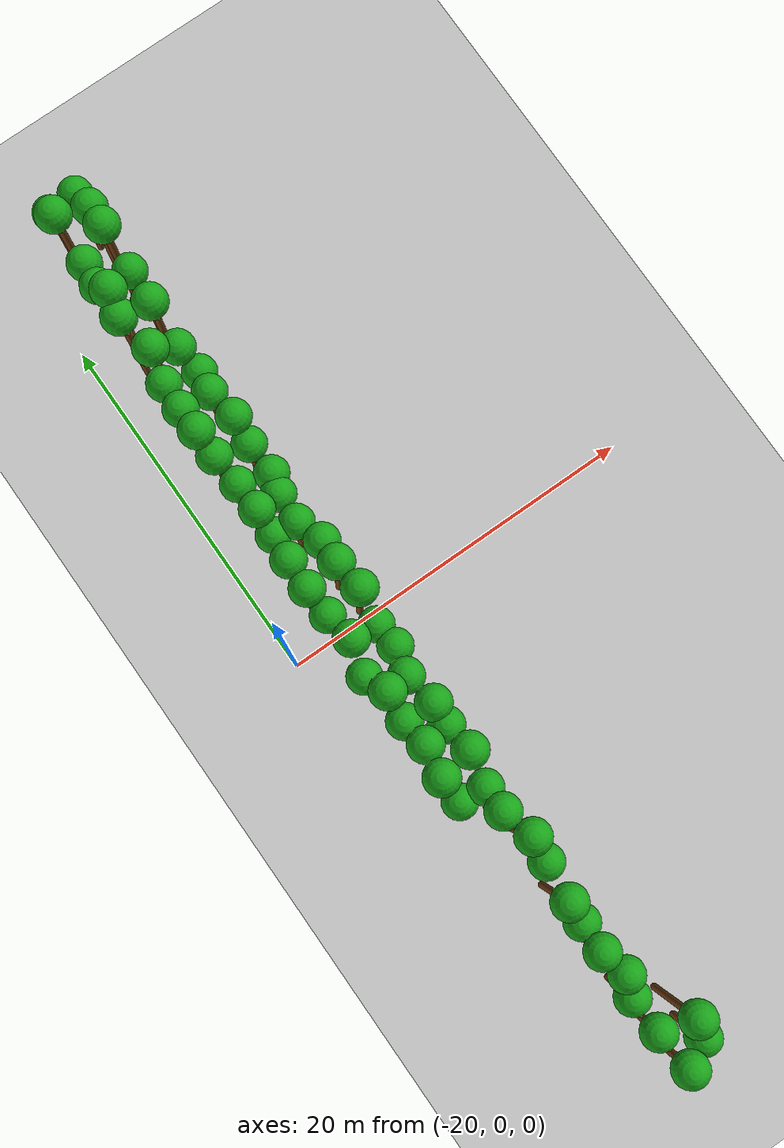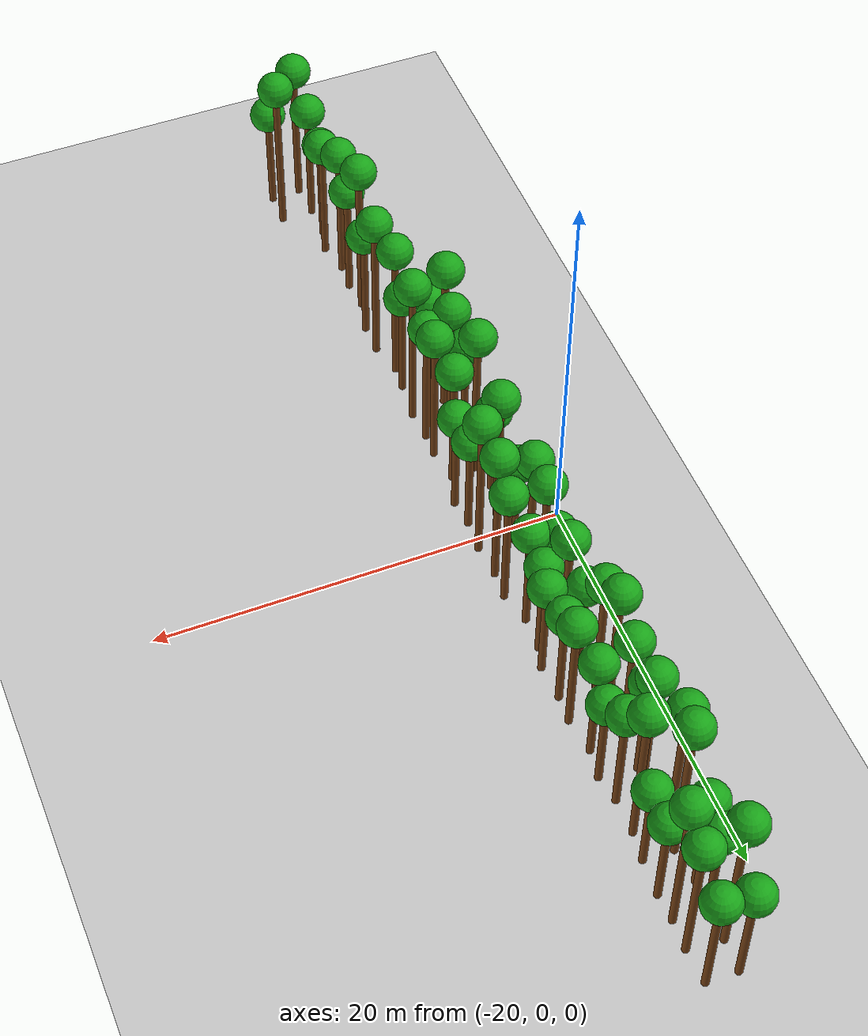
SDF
<sdf version="1.6">
 <world name="forest_world">
  <include><uri>model://sun</uri></include>
  <include><uri>model://ground_plane</uri></include>
  <model name="tree_180">
   <static>true</static>
   <link name="trunk">
    <collision name="collision">
     <pose>-17.45 -10.08 2.68 0 0 0</pose>
     <geometry><cylinder><radius>0.18</radius><length>5.37</length></cylinder></geometry>
    </collision>
    <visual name="trunk_visual">
     <pose>-17.45 -10.08 2.68 0 0 0</pose>
     <geometry><cylinder><radius>0.18</radius><length>5.37</length></cylinder></geometry>
     <material><ambient>0.35 0.20 0.05 1</ambient><diffuse>0.45 0.25 0.08 1</diffuse></material>
    </visual>
    <visual name="leaf_visual">
     <pose>-17.45 -10.08 5.82 0 0 0</pose>
     <geometry><sphere><radius>0.9</radius></sphere></geometry>
     <material><ambient>0.05 0.45 0.05 1</ambient><diffuse>0.10 0.65 0.10 1</diffuse></material>
    </visual>
   </link>
  </model>
  <model name="tree_181">
   <static>true</static>
   <link name="trunk">
    <collision name="collision">
     <pose>-17.66 -8.57 4.39 0 0 0</pose>
     <geometry><cylinder><radius>0.18</radius><length>8.78</length></cylinder></geometry>
    </collision>
    <visual name="trunk_visual">
     <pose>-17.66 -8.57 4.39 0 0 0</pose>
     <geometry><cylinder><radius>0.18</radius><length>8.78</length></cylinder></geometry>
     <material><ambient>0.35 0.20 0.05 1</ambient><diffuse>0.45 0.25 0.08 1</diffuse></material>
    </visual>
    <visual name="leaf_visual">
     <pose>-17.66 -8.57 9.23 0 0 0</pose>
     <geometry><sphere><radius>0.9</radius></sphere></geometry>
     <material><ambient>0.05 0.45 0.05 1</ambient><diffuse>0.10 0.65 0.10 1</diffuse></material>
    </visual>
   </link>
  </model>
  <model name="tree_182">
   <static>true</static>
   <link name="trunk">
    <collision name="collision">
     <pose>-17.35 -6.99 3.85 0 0 0</pose>
     <geometry><cylinder><radius>0.18</radius><length>7.70</length></cylinder></geometry>
    </collision>
    <visual name="trunk_visual">
     <pose>-17.35 -6.99 3.85 0 0 0</pose>
     <geometry><cylinder><radius>0.18</radius><length>7.70</length></cylinder></geometry>
     <material><ambient>0.35 0.20 0.05 1</ambient><diffuse>0.45 0.25 0.08 1</diffuse></material>
    </visual>
    <visual name="leaf_visual">
     <pose>-17.35 -6.99 8.15 0 0 0</pose>
     <geometry><sphere><radius>0.9</radius></sphere></geometry>
     <material><ambient>0.05 0.45 0.05 1</ambient><diffuse>0.10 0.65 0.10 1</diffuse></material>
    </visual>
   </link>
  </model>
  <model name="tree_183">
   <static>true</static>
   <link name="trunk">
    <collision name="collision">
     <pose>-17.48 -5.57 3.36 0 0 0</pose>
     <geometry><cylinder><radius>0.18</radius><length>6.71</length></cylinder></geometry>
    </collision>
    <visual name="trunk_visual">
     <pose>-17.48 -5.57 3.36 0 0 0</pose>
     <geometry><cylinder><radius>0.18</radius><length>6.71</length></cylinder></geometry>
     <material><ambient>0.35 0.20 0.05 1</ambient><diffuse>0.45 0.25 0.08 1</diffuse></material>
    </visual>
    <visual name="leaf_visual">
     <pose>-17.48 -5.57 7.16 0 0 0</pose>
     <geometry><sphere><radius>0.9</radius></sphere></geometry>
     <material><ambient>0.05 0.45 0.05 1</ambient><diffuse>0.10 0.65 0.10 1</diffuse></material>
    </visual>
   </link>
  </model>
  <model name="tree_184">
   <static>true</static>
   <link name="trunk">
    <collision name="collision">
     <pose>-17.42 -4.07 4.40 0 0 0</pose>
     <geometry><cylinder><radius>0.18</radius><length>8.80</length></cylinder></geometry>
    </collision>
    <visual name="trunk_visual">
     <pose>-17.42 -4.07 4.40 0 0 0</pose>
     <geometry><cylinder><radius>0.18</radius><length>8.80</length></cylinder></geometry>
     <material><ambient>0.35 0.20 0.05 1</ambient><diffuse>0.45 0.25 0.08 1</diffuse></material>
    </visual>
    <visual name="leaf_visual">
     <pose>-17.42 -4.07 9.25 0 0 0</pose>
     <geometry><sphere><radius>0.9</radius></sphere></geometry>
     <material><ambient>0.05 0.45 0.05 1</ambient><diffuse>0.10 0.65 0.10 1</diffuse></material>
    </visual>
   </link>
  </model>
  <model name="tree_185">
   <static>true</static>
   <link name="trunk">
    <collision name="collision">
     <pose>-17.74 -2.74 2.51 0 0 0</pose>
     <geometry><cylinder><radius>0.18</radius><length>5.03</length></cylinder></geometry>
    </collision>
    <visual name="trunk_visual">
     <pose>-17.74 -2.74 2.51 0 0 0</pose>
     <geometry><cylinder><radius>0.18</radius><length>5.03</length></cylinder></geometry>
     <material><ambient>0.35 0.20 0.05 1</ambient><diffuse>0.45 0.25 0.08 1</diffuse></material>
    </visual>
    <visual name="leaf_visual">
     <pose>-17.74 -2.74 5.48 0 0 0</pose>
     <geometry><sphere><radius>0.9</radius></sphere></geometry>
     <material><ambient>0.05 0.45 0.05 1</ambient><diffuse>0.10 0.65 0.10 1</diffuse></material>
    </visual>
   </link>
  </model>
  <model name="tree_186">
   <static>true</static>
   <link name="trunk">
    <collision name="collision">
     <pose>-17.34 -1.12 3.91 0 0 0</pose>
     <geometry><cylinder><radius>0.18</radius><length>7.81</length></cylinder></geometry>
    </collision>
    <visual name="trunk_visual">
     <pose>-17.34 -1.12 3.91 0 0 0</pose>
     <geometry><cylinder><radius>0.18</radius><length>7.81</length></cylinder></geometry>
     <material><ambient>0.35 0.20 0.05 1</ambient><diffuse>0.45 0.25 0.08 1</diffuse></material>
    </visual>
    <visual name="leaf_visual">
     <pose>-17.34 -1.12 8.26 0 0 0</pose>
     <geometry><sphere><radius>0.9</radius></sphere></geometry>
     <material><ambient>0.05 0.45 0.05 1</ambient><diffuse>0.10 0.65 0.10 1</diffuse></material>
    </visual>
   </link>
  </model>
  <model name="tree_187">
   <static>true</static>
   <link name="trunk">
    <collision name="collision">
     <pose>-17.50 0.65 2.58 0 0 0</pose>
     <geometry><cylinder><radius>0.18</radius><length>5.16</length></cylinder></geometry>
    </collision>
    <visual name="trunk_visual">
     <pose>-17.50 0.65 2.58 0 0 0</pose>
     <geometry><cylinder><radius>0.18</radius><length>5.16</length></cylinder></geometry>
     <material><ambient>0.35 0.20 0.05 1</ambient><diffuse>0.45 0.25 0.08 1</diffuse></material>
    </visual>
    <visual name="leaf_visual">
     <pose>-17.50 0.65 5.61 0 0 0</pose>
     <geometry><sphere><radius>0.9</radius></sphere></geometry>
     <material><ambient>0.05 0.45 0.05 1</ambient><diffuse>0.10 0.65 0.10 1</diffuse></material>
    </visual>
   </link>
  </model>
  <model name="tree_188">
   <static>true</static>
   <link name="trunk">
    <collision name="collision">
     <pose>-17.66 2.03 3.47 0 0 0</pose>
     <geometry><cylinder><radius>0.18</radius><length>6.95</length></cylinder></geometry>
    </collision>
    <visual name="trunk_visual">
     <pose>-17.66 2.03 3.47 0 0 0</pose>
     <geometry><cylinder><radius>0.18</radius><length>6.95</length></cylinder></geometry>
     <material><ambient>0.35 0.20 0.05 1</ambient><diffuse>0.45 0.25 0.08 1</diffuse></material>
    </visual>
    <visual name="leaf_visual">
     <pose>-17.66 2.03 7.40 0 0 0</pose>
     <geometry><sphere><radius>0.9</radius></sphere></geometry>
     <material><ambient>0.05 0.45 0.05 1</ambient><diffuse>0.10 0.65 0.10 1</diffuse></material>
    </visual>
   </link>
  </model>
  <model name="tree_189">
   <static>true</static>
   <link name="trunk">
    <collision name="collision">
     <pose>-17.61 3.60 3.52 0 0 0</pose>
     <geometry><cylinder><radius>0.18</radius><length>7.03</length></cylinder></geometry>
    </collision>
    <visual name="trunk_visual">
     <pose>-17.61 3.60 3.52 0 0 0</pose>
     <geometry><cylinder><radius>0.18</radius><length>7.03</length></cylinder></geometry>
     <material><ambient>0.35 0.20 0.05 1</ambient><diffuse>0.45 0.25 0.08 1</diffuse></material>
    </visual>
    <visual name="leaf_visual">
     <pose>-17.61 3.60 7.48 0 0 0</pose>
     <geometry><sphere><radius>0.9</radius></sphere></geometry>
     <material><ambient>0.05 0.45 0.05 1</ambient><diffuse>0.10 0.65 0.10 1</diffuse></material>
    </visual>
   </link>
  </model>
  <model name="tree_190">
   <static>true</static>
   <link name="trunk">
    <collision name="collision">
     <pose>-17.45 5.20 2.87 0 0 0</pose>
     <geometry><cylinder><radius>0.18</radius><length>5.74</length></cylinder></geometry>
    </collision>
    <visual name="trunk_visual">
     <pose>-17.45 5.20 2.87 0 0 0</pose>
     <geometry><cylinder><radius>0.18</radius><length>5.74</length></cylinder></geometry>
     <material><ambient>0.35 0.20 0.05 1</ambient><diffuse>0.45 0.25 0.08 1</diffuse></material>
    </visual>
    <visual name="leaf_visual">
     <pose>-17.45 5.20 6.19 0 0 0</pose>
     <geometry><sphere><radius>0.9</radius></sphere></geometry>
     <material><ambient>0.05 0.45 0.05 1</ambient><diffuse>0.10 0.65 0.10 1</diffuse></material>
    </visual>
   </link>
  </model>
  <model name="tree_191">
   <static>true</static>
   <link name="trunk">
    <collision name="collision">
     <pose>-17.44 6.49 3.33 0 0 0</pose>
     <geometry><cylinder><radius>0.18</radius><length>6.65</length></cylinder></geometry>
    </collision>
    <visual name="trunk_visual">
     <pose>-17.44 6.49 3.33 0 0 0</pose>
     <geometry><cylinder><radius>0.18</radius><length>6.65</length></cylinder></geometry>
     <material><ambient>0.35 0.20 0.05 1</ambient><diffuse>0.45 0.25 0.08 1</diffuse></material>
    </visual>
    <visual name="leaf_visual">
     <pose>-17.44 6.49 7.10 0 0 0</pose>
     <geometry><sphere><radius>0.9</radius></sphere></geometry>
     <material><ambient>0.05 0.45 0.05 1</ambient><diffuse>0.10 0.65 0.10 1</diffuse></material>
    </visual>
   </link>
  </model>
  <model name="tree_192">
   <static>true</static>
   <link name="trunk">
    <collision name="collision">
     <pose>-17.45 8.25 2.75 0 0 0</pose>
     <geometry><cylinder><radius>0.18</radius><length>5.51</length></cylinder></geometry>
    </collision>
    <visual name="trunk_visual">
     <pose>-17.45 8.25 2.75 0 0 0</pose>
     <geometry><cylinder><radius>0.18</radius><length>5.51</length></cylinder></geometry>
     <material><ambient>0.35 0.20 0.05 1</ambient><diffuse>0.45 0.25 0.08 1</diffuse></material>
    </visual>
    <visual name="leaf_visual">
     <pose>-17.45 8.25 5.96 0 0 0</pose>
     <geometry><sphere><radius>0.9</radius></sphere></geometry>
     <material><ambient>0.05 0.45 0.05 1</ambient><diffuse>0.10 0.65 0.10 1</diffuse></material>
    </visual>
   </link>
  </model>
  <model name="tree_193">
   <static>true</static>
   <link name="trunk">
    <collision name="collision">
     <pose>-17.67 9.58 3.62 0 0 0</pose>
     <geometry><cylinder><radius>0.18</radius><length>7.24</length></cylinder></geometry>
    </collision>
    <visual name="trunk_visual">
     <pose>-17.67 9.58 3.62 0 0 0</pose>
     <geometry><cylinder><radius>0.18</radius><length>7.24</length></cylinder></geometry>
     <material><ambient>0.35 0.20 0.05 1</ambient><diffuse>0.45 0.25 0.08 1</diffuse></material>
    </visual>
    <visual name="leaf_visual">
     <pose>-17.67 9.58 7.69 0 0 0</pose>
     <geometry><sphere><radius>0.9</radius></sphere></geometry>
     <material><ambient>0.05 0.45 0.05 1</ambient><diffuse>0.10 0.65 0.10 1</diffuse></material>
    </visual>
   </link>
  </model>
  <model name="tree_194">
   <static>true</static>
   <link name="trunk">
    <collision name="collision">
     <pose>-17.72 10.84 4.04 0 0 0</pose>
     <geometry><cylinder><radius>0.18</radius><length>8.08</length></cylinder></geometry>
    </collision>
    <visual name="trunk_visual">
     <pose>-17.72 10.84 4.04 0 0 0</pose>
     <geometry><cylinder><radius>0.18</radius><length>8.08</length></cylinder></geometry>
     <material><ambient>0.35 0.20 0.05 1</ambient><diffuse>0.45 0.25 0.08 1</diffuse></material>
    </visual>
    <visual name="leaf_visual">
     <pose>-17.72 10.84 8.53 0 0 0</pose>
     <geometry><sphere><radius>0.9</radius></sphere></geometry>
     <material><ambient>0.05 0.45 0.05 1</ambient><diffuse>0.10 0.65 0.10 1</diffuse></material>
    </visual>
   </link>
  </model>
  <model name="tree_195">
   <static>true</static>
   <link name="trunk">
    <collision name="collision">
     <pose>-17.69 12.46 3.43 0 0 0</pose>
     <geometry><cylinder><radius>0.18</radius><length>6.85</length></cylinder></geometry>
    </collision>
    <visual name="trunk_visual">
     <pose>-17.69 12.46 3.43 0 0 0</pose>
     <geometry><cylinder><radius>0.18</radius><length>6.85</length></cylinder></geometry>
     <material><ambient>0.35 0.20 0.05 1</ambient><diffuse>0.45 0.25 0.08 1</diffuse></material>
    </visual>
    <visual name="leaf_visual">
     <pose>-17.69 12.46 7.30 0 0 0</pose>
     <geometry><sphere><radius>0.9</radius></sphere></geometry>
     <material><ambient>0.05 0.45 0.05 1</ambient><diffuse>0.10 0.65 0.10 1</diffuse></material>
    </visual>
   </link>
  </model>
  <model name="tree_196">
   <static>true</static>
   <link name="trunk">
    <collision name="collision">
     <pose>-17.62 14.14 3.06 0 0 0</pose>
     <geometry><cylinder><radius>0.18</radius><length>6.13</length></cylinder></geometry>
    </collision>
    <visual name="trunk_visual">
     <pose>-17.62 14.14 3.06 0 0 0</pose>
     <geometry><cylinder><radius>0.18</radius><length>6.13</length></cylinder></geometry>
     <material><ambient>0.35 0.20 0.05 1</ambient><diffuse>0.45 0.25 0.08 1</diffuse></material>
    </visual>
    <visual name="leaf_visual">
     <pose>-17.62 14.14 6.58 0 0 0</pose>
     <geometry><sphere><radius>0.9</radius></sphere></geometry>
     <material><ambient>0.05 0.45 0.05 1</ambient><diffuse>0.10 0.65 0.10 1</diffuse></material>
    </visual>
   </link>
  </model>
  <model name="tree_197">
   <static>true</static>
   <link name="trunk">
    <collision name="collision">
     <pose>-17.27 15.26 4.13 0 0 0</pose>
     <geometry><cylinder><radius>0.18</radius><length>8.25</length></cylinder></geometry>
    </collision>
    <visual name="trunk_visual">
     <pose>-17.27 15.26 4.13 0 0 0</pose>
     <geometry><cylinder><radius>0.18</radius><length>8.25</length></cylinder></geometry>
     <material><ambient>0.35 0.20 0.05 1</ambient><diffuse>0.45 0.25 0.08 1</diffuse></material>
    </visual>
    <visual name="leaf_visual">
     <pose>-17.27 15.26 8.70 0 0 0</pose>
     <geometry><sphere><radius>0.9</radius></sphere></geometry>
     <material><ambient>0.05 0.45 0.05 1</ambient><diffuse>0.10 0.65 0.10 1</diffuse></material>
    </visual>
   </link>
  </model>
  <model name="tree_198">
   <static>true</static>
   <link name="trunk">
    <collision name="collision">
     <pose>-17.66 17.24 4.23 0 0 0</pose>
     <geometry><cylinder><radius>0.18</radius><length>8.46</length></cylinder></geometry>
    </collision>
    <visual name="trunk_visual">
     <pose>-17.66 17.24 4.23 0 0 0</pose>
     <geometry><cylinder><radius>0.18</radius><length>8.46</length></cylinder></geometry>
     <material><ambient>0.35 0.20 0.05 1</ambient><diffuse>0.45 0.25 0.08 1</diffuse></material>
    </visual>
    <visual name="leaf_visual">
     <pose>-17.66 17.24 8.91 0 0 0</pose>
     <geometry><sphere><radius>0.9</radius></sphere></geometry>
     <material><ambient>0.05 0.45 0.05 1</ambient><diffuse>0.10 0.65 0.10 1</diffuse></material>
    </visual>
   </link>
  </model>
  <model name="tree_199">
   <static>true</static>
   <link name="trunk">
    <collision name="collision">
     <pose>-17.35 18.41 4.50 0 0 0</pose>
     <geometry><cylinder><radius>0.18</radius><length>8.99</length></cylinder></geometry>
    </collision>
    <visual name="trunk_visual">
     <pose>-17.35 18.41 4.50 0 0 0</pose>
     <geometry><cylinder><radius>0.18</radius><length>8.99</length></cylinder></geometry>
     <material><ambient>0.35 0.20 0.05 1</ambient><diffuse>0.45 0.25 0.08 1</diffuse></material>
    </visual>
    <visual name="leaf_visual">
     <pose>-17.35 18.41 9.44 0 0 0</pose>
     <geometry><sphere><radius>0.9</radius></sphere></geometry>
     <material><ambient>0.05 0.45 0.05 1</ambient><diffuse>0.10 0.65 0.10 1</diffuse></material>
    </visual>
   </link>
  </model>
  <model name="tree_200">
   <static>true</static>
   <link name="trunk">
    <collision name="collision">
     <pose>-17.53 20.06 3.00 0 0 0</pose>
     <geometry><cylinder><radius>0.18</radius><length>6.00</length></cylinder></geometry>
    </collision>
    <visual name="trunk_visual">
     <pose>-17.53 20.06 3.00 0 0 0</pose>
     <geometry><cylinder><radius>0.18</radius><length>6.00</length></cylinder></geometry>
     <material><ambient>0.35 0.20 0.05 1</ambient><diffuse>0.45 0.25 0.08 1</diffuse></material>
    </visual>
    <visual name="leaf_visual">
     <pose>-17.53 20.06 6.45 0 0 0</pose>
     <geometry><sphere><radius>0.9</radius></sphere></geometry>
     <material><ambient>0.05 0.45 0.05 1</ambient><diffuse>0.10 0.65 0.10 1</diffuse></material>
    </visual>
   </link>
  </model>
  <model name="tree_201">
   <static>true</static>
   <link name="trunk">
    <collision name="collision">
     <pose>-17.41 21.47 2.89 0 0 0</pose>
     <geometry><cylinder><radius>0.18</radius><length>5.77</length></cylinder></geometry>
    </collision>
    <visual name="trunk_visual">
     <pose>-17.41 21.47 2.89 0 0 0</pose>
     <geometry><cylinder><radius>0.18</radius><length>5.77</length></cylinder></geometry>
     <material><ambient>0.35 0.20 0.05 1</ambient><diffuse>0.45 0.25 0.08 1</diffuse></material>
    </visual>
    <visual name="leaf_visual">
     <pose>-17.41 21.47 6.22 0 0 0</pose>
     <geometry><sphere><radius>0.9</radius></sphere></geometry>
     <material><ambient>0.05 0.45 0.05 1</ambient><diffuse>0.10 0.65 0.10 1</diffuse></material>
    </visual>
   </link>
  </model>
  <model name="tree_202">
   <static>true</static>
   <link name="trunk">
    <collision name="collision">
     <pose>-17.45 22.96 4.37 0 0 0</pose>
     <geometry><cylinder><radius>0.18</radius><length>8.75</length></cylinder></geometry>
    </collision>
    <visual name="trunk_visual">
     <pose>-17.45 22.96 4.37 0 0 0</pose>
     <geometry><cylinder><radius>0.18</radius><length>8.75</length></cylinder></geometry>
     <material><ambient>0.35 0.20 0.05 1</ambient><diffuse>0.45 0.25 0.08 1</diffuse></material>
    </visual>
    <visual name="leaf_visual">
     <pose>-17.45 22.96 9.20 0 0 0</pose>
     <geometry><sphere><radius>0.9</radius></sphere></geometry>
     <material><ambient>0.05 0.45 0.05 1</ambient><diffuse>0.10 0.65 0.10 1</diffuse></material>
    </visual>
   </link>
  </model>
  <model name="tree_203">
   <static>true</static>
   <link name="trunk">
    <collision name="collision">
     <pose>-17.37 24.48 2.93 0 0 0</pose>
     <geometry><cylinder><radius>0.18</radius><length>5.85</length></cylinder></geometry>
    </collision>
    <visual name="trunk_visual">
     <pose>-17.37 24.48 2.93 0 0 0</pose>
     <geometry><cylinder><radius>0.18</radius><length>5.85</length></cylinder></geometry>
     <material><ambient>0.35 0.20 0.05 1</ambient><diffuse>0.45 0.25 0.08 1</diffuse></material>
    </visual>
    <visual name="leaf_visual">
     <pose>-17.37 24.48 6.30 0 0 0</pose>
     <geometry><sphere><radius>0.9</radius></sphere></geometry>
     <material><ambient>0.05 0.45 0.05 1</ambient><diffuse>0.10 0.65 0.10 1</diffuse></material>
    </visual>
   </link>
  </model>
  <model name="tree_204">
   <static>true</static>
   <link name="trunk">
    <collision name="collision">
     <pose>-16.02 -25.18 3.94 0 0 0</pose>
     <geometry><cylinder><radius>0.18</radius><length>7.87</length></cylinder></geometry>
    </collision>
    <visual name="trunk_visual">
     <pose>-16.02 -25.18 3.94 0 0 0</pose>
     <geometry><cylinder><radius>0.18</radius><length>7.87</length></cylinder></geometry>
     <material><ambient>0.35 0.20 0.05 1</ambient><diffuse>0.45 0.25 0.08 1</diffuse></material>
    </visual>
    <visual name="leaf_visual">
     <pose>-16.02 -25.18 8.32 0 0 0</pose>
     <geometry><sphere><radius>0.9</radius></sphere></geometry>
     <material><ambient>0.05 0.45 0.05 1</ambient><diffuse>0.10 0.65 0.10 1</diffuse></material>
    </visual>
   </link>
  </model>
  <model name="tree_205">
   <static>true</static>
   <link name="trunk">
    <collision name="collision">
     <pose>-16.13 -23.47 3.28 0 0 0</pose>
     <geometry><cylinder><radius>0.18</radius><length>6.56</length></cylinder></geometry>
    </collision>
    <visual name="trunk_visual">
     <pose>-16.13 -23.47 3.28 0 0 0</pose>
     <geometry><cylinder><radius>0.18</radius><length>6.56</length></cylinder></geometry>
     <material><ambient>0.35 0.20 0.05 1</ambient><diffuse>0.45 0.25 0.08 1</diffuse></material>
    </visual>
    <visual name="leaf_visual">
     <pose>-16.13 -23.47 7.01 0 0 0</pose>
     <geometry><sphere><radius>0.9</radius></sphere></geometry>
     <material><ambient>0.05 0.45 0.05 1</ambient><diffuse>0.10 0.65 0.10 1</diffuse></material>
    </visual>
   </link>
  </model>
  <model name="tree_206">
   <static>true</static>
   <link name="trunk">
    <collision name="collision">
     <pose>-16.14 -21.76 2.87 0 0 0</pose>
     <geometry><cylinder><radius>0.18</radius><length>5.74</length></cylinder></geometry>
    </collision>
    <visual name="trunk_visual">
     <pose>-16.14 -21.76 2.87 0 0 0</pose>
     <geometry><cylinder><radius>0.18</radius><length>5.74</length></cylinder></geometry>
     <material><ambient>0.35 0.20 0.05 1</ambient><diffuse>0.45 0.25 0.08 1</diffuse></material>
    </visual>
    <visual name="leaf_visual">
     <pose>-16.14 -21.76 6.19 0 0 0</pose>
     <geometry><sphere><radius>0.9</radius></sphere></geometry>
     <material><ambient>0.05 0.45 0.05 1</ambient><diffuse>0.10 0.65 0.10 1</diffuse></material>
    </visual>
   </link>
  </model>
  <model name="tree_207">
   <static>true</static>
   <link name="trunk">
    <collision name="collision">
     <pose>-15.83 -20.55 3.38 0 0 0</pose>
     <geometry><cylinder><radius>0.18</radius><length>6.76</length></cylinder></geometry>
    </collision>
    <visual name="trunk_visual">
     <pose>-15.83 -20.55 3.38 0 0 0</pose>
     <geometry><cylinder><radius>0.18</radius><length>6.76</length></cylinder></geometry>
     <material><ambient>0.35 0.20 0.05 1</ambient><diffuse>0.45 0.25 0.08 1</diffuse></material>
    </visual>
    <visual name="leaf_visual">
     <pose>-15.83 -20.55 7.21 0 0 0</pose>
     <geometry><sphere><radius>0.9</radius></sphere></geometry>
     <material><ambient>0.05 0.45 0.05 1</ambient><diffuse>0.10 0.65 0.10 1</diffuse></material>
    </visual>
   </link>
  </model>
  <model name="tree_208">
   <static>true</static>
   <link name="trunk">
    <collision name="collision">
     <pose>-16.18 -18.99 3.71 0 0 0</pose>
     <geometry><cylinder><radius>0.18</radius><length>7.43</length></cylinder></geometry>
    </collision>
    <visual name="trunk_visual">
     <pose>-16.18 -18.99 3.71 0 0 0</pose>
     <geometry><cylinder><radius>0.18</radius><length>7.43</length></cylinder></geometry>
     <material><ambient>0.35 0.20 0.05 1</ambient><diffuse>0.45 0.25 0.08 1</diffuse></material>
    </visual>
    <visual name="leaf_visual">
     <pose>-16.18 -18.99 7.88 0 0 0</pose>
     <geometry><sphere><radius>0.9</radius></sphere></geometry>
     <material><ambient>0.05 0.45 0.05 1</ambient><diffuse>0.10 0.65 0.10 1</diffuse></material>
    </visual>
   </link>
  </model>
  <model name="tree_209">
   <static>true</static>
   <link name="trunk">
    <collision name="collision">
     <pose>-16.08 -17.63 3.13 0 0 0</pose>
     <geometry><cylinder><radius>0.18</radius><length>6.26</length></cylinder></geometry>
    </collision>
    <visual name="trunk_visual">
     <pose>-16.08 -17.63 3.13 0 0 0</pose>
     <geometry><cylinder><radius>0.18</radius><length>6.26</length></cylinder></geometry>
     <material><ambient>0.35 0.20 0.05 1</ambient><diffuse>0.45 0.25 0.08 1</diffuse></material>
    </visual>
    <visual name="leaf_visual">
     <pose>-16.08 -17.63 6.71 0 0 0</pose>
     <geometry><sphere><radius>0.9</radius></sphere></geometry>
     <material><ambient>0.05 0.45 0.05 1</ambient><diffuse>0.10 0.65 0.10 1</diffuse></material>
    </visual>
   </link>
  </model>
  <model name="tree_210">
   <static>true</static>
   <link name="trunk">
    <collision name="collision">
     <pose>-16.20 -16.18 4.38 0 0 0</pose>
     <geometry><cylinder><radius>0.18</radius><length>8.77</length></cylinder></geometry>
    </collision>
    <visual name="trunk_visual">
     <pose>-16.20 -16.18 4.38 0 0 0</pose>
     <geometry><cylinder><radius>0.18</radius><length>8.77</length></cylinder></geometry>
     <material><ambient>0.35 0.20 0.05 1</ambient><diffuse>0.45 0.25 0.08 1</diffuse></material>
    </visual>
    <visual name="leaf_visual">
     <pose>-16.20 -16.18 9.22 0 0 0</pose>
     <geometry><sphere><radius>0.9</radius></sphere></geometry>
     <material><ambient>0.05 0.45 0.05 1</ambient><diffuse>0.10 0.65 0.10 1</diffuse></material>
    </visual>
   </link>
  </model>
  <model name="tree_211">
   <static>true</static>
   <link name="trunk">
    <collision name="collision">
     <pose>-15.81 -14.53 3.06 0 0 0</pose>
     <geometry><cylinder><radius>0.18</radius><length>6.12</length></cylinder></geometry>
    </collision>
    <visual name="trunk_visual">
     <pose>-15.81 -14.53 3.06 0 0 0</pose>
     <geometry><cylinder><radius>0.18</radius><length>6.12</length></cylinder></geometry>
     <material><ambient>0.35 0.20 0.05 1</ambient><diffuse>0.45 0.25 0.08 1</diffuse></material>
    </visual>
    <visual name="leaf_visual">
     <pose>-15.81 -14.53 6.57 0 0 0</pose>
     <geometry><sphere><radius>0.9</radius></sphere></geometry>
     <material><ambient>0.05 0.45 0.05 1</ambient><diffuse>0.10 0.65 0.10 1</diffuse></material>
    </visual>
   </link>
  </model>
  <model name="tree_212">
   <static>true</static>
   <link name="trunk">
    <collision name="collision">
     <pose>-15.81 -13.02 4.15 0 0 0</pose>
     <geometry><cylinder><radius>0.18</radius><length>8.31</length></cylinder></geometry>
    </collision>
    <visual name="trunk_visual">
     <pose>-15.81 -13.02 4.15 0 0 0</pose>
     <geometry><cylinder><radius>0.18</radius><length>8.31</length></cylinder></geometry>
     <material><ambient>0.35 0.20 0.05 1</ambient><diffuse>0.45 0.25 0.08 1</diffuse></material>
    </visual>
    <visual name="leaf_visual">
     <pose>-15.81 -13.02 8.76 0 0 0</pose>
     <geometry><sphere><radius>0.9</radius></sphere></geometry>
     <material><ambient>0.05 0.45 0.05 1</ambient><diffuse>0.10 0.65 0.10 1</diffuse></material>
    </visual>
   </link>
  </model>
  <model name="tree_213">
   <static>true</static>
   <link name="trunk">
    <collision name="collision">
     <pose>-16.22 -11.39 3.94 0 0 0</pose>
     <geometry><cylinder><radius>0.18</radius><length>7.88</length></cylinder></geometry>
    </collision>
    <visual name="trunk_visual">
     <pose>-16.22 -11.39 3.94 0 0 0</pose>
     <geometry><cylinder><radius>0.18</radius><length>7.88</length></cylinder></geometry>
     <material><ambient>0.35 0.20 0.05 1</ambient><diffuse>0.45 0.25 0.08 1</diffuse></material>
    </visual>
    <visual name="leaf_visual">
     <pose>-16.22 -11.39 8.33 0 0 0</pose>
     <geometry><sphere><radius>0.9</radius></sphere></geometry>
     <material><ambient>0.05 0.45 0.05 1</ambient><diffuse>0.10 0.65 0.10 1</diffuse></material>
    </visual>
   </link>
  </model>
  <model name="tree_214">
   <static>true</static>
   <link name="trunk">
    <collision name="collision">
     <pose>-16.11 -10.19 2.96 0 0 0</pose>
     <geometry><cylinder><radius>0.18</radius><length>5.93</length></cylinder></geometry>
    </collision>
    <visual name="trunk_visual">
     <pose>-16.11 -10.19 2.96 0 0 0</pose>
     <geometry><cylinder><radius>0.18</radius><length>5.93</length></cylinder></geometry>
     <material><ambient>0.35 0.20 0.05 1</ambient><diffuse>0.45 0.25 0.08 1</diffuse></material>
    </visual>
    <visual name="leaf_visual">
     <pose>-16.11 -10.19 6.38 0 0 0</pose>
     <geometry><sphere><radius>0.9</radius></sphere></geometry>
     <material><ambient>0.05 0.45 0.05 1</ambient><diffuse>0.10 0.65 0.10 1</diffuse></material>
    </visual>
   </link>
  </model>
  <model name="tree_215">
   <static>true</static>
   <link name="trunk">
    <collision name="collision">
     <pose>-15.90 -8.29 4.28 0 0 0</pose>
     <geometry><cylinder><radius>0.18</radius><length>8.56</length></cylinder></geometry>
    </collision>
    <visual name="trunk_visual">
     <pose>-15.90 -8.29 4.28 0 0 0</pose>
     <geometry><cylinder><radius>0.18</radius><length>8.56</length></cylinder></geometry>
     <material><ambient>0.35 0.20 0.05 1</ambient><diffuse>0.45 0.25 0.08 1</diffuse></material>
    </visual>
    <visual name="leaf_visual">
     <pose>-15.90 -8.29 9.01 0 0 0</pose>
     <geometry><sphere><radius>0.9</radius></sphere></geometry>
     <material><ambient>0.05 0.45 0.05 1</ambient><diffuse>0.10 0.65 0.10 1</diffuse></material>
    </visual>
   </link>
  </model>
  <model name="tree_216">
   <static>true</static>
   <link name="trunk">
    <collision name="collision">
     <pose>-16.02 -6.79 3.60 0 0 0</pose>
     <geometry><cylinder><radius>0.18</radius><length>7.21</length></cylinder></geometry>
    </collision>
    <visual name="trunk_visual">
     <pose>-16.02 -6.79 3.60 0 0 0</pose>
     <geometry><cylinder><radius>0.18</radius><length>7.21</length></cylinder></geometry>
     <material><ambient>0.35 0.20 0.05 1</ambient><diffuse>0.45 0.25 0.08 1</diffuse></material>
    </visual>
    <visual name="leaf_visual">
     <pose>-16.02 -6.79 7.66 0 0 0</pose>
     <geometry><sphere><radius>0.9</radius></sphere></geometry>
     <material><ambient>0.05 0.45 0.05 1</ambient><diffuse>0.10 0.65 0.10 1</diffuse></material>
    </visual>
   </link>
  </model>
  <model name="tree_217">
   <static>true</static>
   <link name="trunk">
    <collision name="collision">
     <pose>-15.96 -5.64 3.86 0 0 0</pose>
     <geometry><cylinder><radius>0.18</radius><length>7.72</length></cylinder></geometry>
    </collision>
    <visual name="trunk_visual">
     <pose>-15.96 -5.64 3.86 0 0 0</pose>
     <geometry><cylinder><radius>0.18</radius><length>7.72</length></cylinder></geometry>
     <material><ambient>0.35 0.20 0.05 1</ambient><diffuse>0.45 0.25 0.08 1</diffuse></material>
    </visual>
    <visual name="leaf_visual">
     <pose>-15.96 -5.64 8.17 0 0 0</pose>
     <geometry><sphere><radius>0.9</radius></sphere></geometry>
     <material><ambient>0.05 0.45 0.05 1</ambient><diffuse>0.10 0.65 0.10 1</diffuse></material>
    </visual>
   </link>
  </model>
  <model name="tree_218">
   <static>true</static>
   <link name="trunk">
    <collision name="collision">
     <pose>-16.23 -3.91 3.58 0 0 0</pose>
     <geometry><cylinder><radius>0.18</radius><length>7.16</length></cylinder></geometry>
    </collision>
    <visual name="trunk_visual">
     <pose>-16.23 -3.91 3.58 0 0 0</pose>
     <geometry><cylinder><radius>0.18</radius><length>7.16</length></cylinder></geometry>
     <material><ambient>0.35 0.20 0.05 1</ambient><diffuse>0.45 0.25 0.08 1</diffuse></material>
    </visual>
    <visual name="leaf_visual">
     <pose>-16.23 -3.91 7.61 0 0 0</pose>
     <geometry><sphere><radius>0.9</radius></sphere></geometry>
     <material><ambient>0.05 0.45 0.05 1</ambient><diffuse>0.10 0.65 0.10 1</diffuse></material>
    </visual>
   </link>
  </model>
  <model name="tree_219">
   <static>true</static>
   <link name="trunk">
    <collision name="collision">
     <pose>-15.75 -2.42 2.86 0 0 0</pose>
     <geometry><cylinder><radius>0.18</radius><length>5.72</length></cylinder></geometry>
    </collision>
    <visual name="trunk_visual">
     <pose>-15.75 -2.42 2.86 0 0 0</pose>
     <geometry><cylinder><radius>0.18</radius><length>5.72</length></cylinder></geometry>
     <material><ambient>0.35 0.20 0.05 1</ambient><diffuse>0.45 0.25 0.08 1</diffuse></material>
    </visual>
    <visual name="leaf_visual">
     <pose>-15.75 -2.42 6.17 0 0 0</pose>
     <geometry><sphere><radius>0.9</radius></sphere></geometry>
     <material><ambient>0.05 0.45 0.05 1</ambient><diffuse>0.10 0.65 0.10 1</diffuse></material>
    </visual>
   </link>
  </model>
  <model name="tree_220">
   <static>true</static>
   <link name="trunk">
    <collision name="collision">
     <pose>-15.88 -1.06 2.77 0 0 0</pose>
     <geometry><cylinder><radius>0.18</radius><length>5.53</length></cylinder></geometry>
    </collision>
    <visual name="trunk_visual">
     <pose>-15.88 -1.06 2.77 0 0 0</pose>
     <geometry><cylinder><radius>0.18</radius><length>5.53</length></cylinder></geometry>
     <material><ambient>0.35 0.20 0.05 1</ambient><diffuse>0.45 0.25 0.08 1</diffuse></material>
    </visual>
    <visual name="leaf_visual">
     <pose>-15.88 -1.06 5.98 0 0 0</pose>
     <geometry><sphere><radius>0.9</radius></sphere></geometry>
     <material><ambient>0.05 0.45 0.05 1</ambient><diffuse>0.10 0.65 0.10 1</diffuse></material>
    </visual>
   </link>
  </model>
  <model name="tree_221">
   <static>true</static>
   <link name="trunk">
    <collision name="collision">
     <pose>-15.76 0.49 4.25 0 0 0</pose>
     <geometry><cylinder><radius>0.18</radius><length>8.50</length></cylinder></geometry>
    </collision>
    <visual name="trunk_visual">
     <pose>-15.76 0.49 4.25 0 0 0</pose>
     <geometry><cylinder><radius>0.18</radius><length>8.50</length></cylinder></geometry>
     <material><ambient>0.35 0.20 0.05 1</ambient><diffuse>0.45 0.25 0.08 1</diffuse></material>
    </visual>
    <visual name="leaf_visual">
     <pose>-15.76 0.49 8.95 0 0 0</pose>
     <geometry><sphere><radius>0.9</radius></sphere></geometry>
     <material><ambient>0.05 0.45 0.05 1</ambient><diffuse>0.10 0.65 0.10 1</diffuse></material>
    </visual>
   </link>
  </model>
  <model name="tree_222">
   <static>true</static>
   <link name="trunk">
    <collision name="collision">
     <pose>-15.90 2.14 3.99 0 0 0</pose>
     <geometry><cylinder><radius>0.18</radius><length>7.98</length></cylinder></geometry>
    </collision>
    <visual name="trunk_visual">
     <pose>-15.90 2.14 3.99 0 0 0</pose>
     <geometry><cylinder><radius>0.18</radius><length>7.98</length></cylinder></geometry>
     <material><ambient>0.35 0.20 0.05 1</ambient><diffuse>0.45 0.25 0.08 1</diffuse></material>
    </visual>
    <visual name="leaf_visual">
     <pose>-15.90 2.14 8.43 0 0 0</pose>
     <geometry><sphere><radius>0.9</radius></sphere></geometry>
     <material><ambient>0.05 0.45 0.05 1</ambient><diffuse>0.10 0.65 0.10 1</diffuse></material>
    </visual>
   </link>
  </model>
  <model name="tree_223">
   <static>true</static>
   <link name="trunk">
    <collision name="collision">
     <pose>-15.81 3.48 3.47 0 0 0</pose>
     <geometry><cylinder><radius>0.18</radius><length>6.94</length></cylinder></geometry>
    </collision>
    <visual name="trunk_visual">
     <pose>-15.81 3.48 3.47 0 0 0</pose>
     <geometry><cylinder><radius>0.18</radius><length>6.94</length></cylinder></geometry>
     <material><ambient>0.35 0.20 0.05 1</ambient><diffuse>0.45 0.25 0.08 1</diffuse></material>
    </visual>
    <visual name="leaf_visual">
     <pose>-15.81 3.48 7.39 0 0 0</pose>
     <geometry><sphere><radius>0.9</radius></sphere></geometry>
     <material><ambient>0.05 0.45 0.05 1</ambient><diffuse>0.10 0.65 0.10 1</diffuse></material>
    </visual>
   </link>
  </model>
  <model name="tree_224">
   <static>true</static>
   <link name="trunk">
    <collision name="collision">
     <pose>-16.21 5.07 2.98 0 0 0</pose>
     <geometry><cylinder><radius>0.18</radius><length>5.96</length></cylinder></geometry>
    </collision>
    <visual name="trunk_visual">
     <pose>-16.21 5.07 2.98 0 0 0</pose>
     <geometry><cylinder><radius>0.18</radius><length>5.96</length></cylinder></geometry>
     <material><ambient>0.35 0.20 0.05 1</ambient><diffuse>0.45 0.25 0.08 1</diffuse></material>
    </visual>
    <visual name="leaf_visual">
     <pose>-16.21 5.07 6.41 0 0 0</pose>
     <geometry><sphere><radius>0.9</radius></sphere></geometry>
     <material><ambient>0.05 0.45 0.05 1</ambient><diffuse>0.10 0.65 0.10 1</diffuse></material>
    </visual>
   </link>
  </model>
  <model name="tree_225">
   <static>true</static>
   <link name="trunk">
    <collision name="collision">
     <pose>-16.13 6.72 2.82 0 0 0</pose>
     <geometry><cylinder><radius>0.18</radius><length>5.63</length></cylinder></geometry>
    </collision>
    <visual name="trunk_visual">
     <pose>-16.13 6.72 2.82 0 0 0</pose>
     <geometry><cylinder><radius>0.18</radius><length>5.63</length></cylinder></geometry>
     <material><ambient>0.35 0.20 0.05 1</ambient><diffuse>0.45 0.25 0.08 1</diffuse></material>
    </visual>
    <visual name="leaf_visual">
     <pose>-16.13 6.72 6.08 0 0 0</pose>
     <geometry><sphere><radius>0.9</radius></sphere></geometry>
     <material><ambient>0.05 0.45 0.05 1</ambient><diffuse>0.10 0.65 0.10 1</diffuse></material>
    </visual>
   </link>
  </model>
  <model name="tree_226">
   <static>true</static>
   <link name="trunk">
    <collision name="collision">
     <pose>-15.82 7.76 2.78 0 0 0</pose>
     <geometry><cylinder><radius>0.18</radius><length>5.56</length></cylinder></geometry>
    </collision>
    <visual name="trunk_visual">
     <pose>-15.82 7.76 2.78 0 0 0</pose>
     <geometry><cylinder><radius>0.18</radius><length>5.56</length></cylinder></geometry>
     <material><ambient>0.35 0.20 0.05 1</ambient><diffuse>0.45 0.25 0.08 1</diffuse></material>
    </visual>
    <visual name="leaf_visual">
     <pose>-15.82 7.76 6.01 0 0 0</pose>
     <geometry><sphere><radius>0.9</radius></sphere></geometry>
     <material><ambient>0.05 0.45 0.05 1</ambient><diffuse>0.10 0.65 0.10 1</diffuse></material>
    </visual>
   </link>
  </model>
  <model name="tree_227">
   <static>true</static>
   <link name="trunk">
    <collision name="collision">
     <pose>-15.91 9.50 2.87 0 0 0</pose>
     <geometry><cylinder><radius>0.18</radius><length>5.73</length></cylinder></geometry>
    </collision>
    <visual name="trunk_visual">
     <pose>-15.91 9.50 2.87 0 0 0</pose>
     <geometry><cylinder><radius>0.18</radius><length>5.73</length></cylinder></geometry>
     <material><ambient>0.35 0.20 0.05 1</ambient><diffuse>0.45 0.25 0.08 1</diffuse></material>
    </visual>
    <visual name="leaf_visual">
     <pose>-15.91 9.50 6.18 0 0 0</pose>
     <geometry><sphere><radius>0.9</radius></sphere></geometry>
     <material><ambient>0.05 0.45 0.05 1</ambient><diffuse>0.10 0.65 0.10 1</diffuse></material>
    </visual>
   </link>
  </model>
  <model name="tree_228">
   <static>true</static>
   <link name="trunk">
    <collision name="collision">
     <pose>-15.82 10.80 3.32 0 0 0</pose>
     <geometry><cylinder><radius>0.18</radius><length>6.65</length></cylinder></geometry>
    </collision>
    <visual name="trunk_visual">
     <pose>-15.82 10.80 3.32 0 0 0</pose>
     <geometry><cylinder><radius>0.18</radius><length>6.65</length></cylinder></geometry>
     <material><ambient>0.35 0.20 0.05 1</ambient><diffuse>0.45 0.25 0.08 1</diffuse></material>
    </visual>
    <visual name="leaf_visual">
     <pose>-15.82 10.80 7.10 0 0 0</pose>
     <geometry><sphere><radius>0.9</radius></sphere></geometry>
     <material><ambient>0.05 0.45 0.05 1</ambient><diffuse>0.10 0.65 0.10 1</diffuse></material>
    </visual>
   </link>
  </model>
  <model name="tree_229">
   <static>true</static>
   <link name="trunk">
    <collision name="collision">
     <pose>-16.06 12.56 3.10 0 0 0</pose>
     <geometry><cylinder><radius>0.18</radius><length>6.21</length></cylinder></geometry>
    </collision>
    <visual name="trunk_visual">
     <pose>-16.06 12.56 3.10 0 0 0</pose>
     <geometry><cylinder><radius>0.18</radius><length>6.21</length></cylinder></geometry>
     <material><ambient>0.35 0.20 0.05 1</ambient><diffuse>0.45 0.25 0.08 1</diffuse></material>
    </visual>
    <visual name="leaf_visual">
     <pose>-16.06 12.56 6.66 0 0 0</pose>
     <geometry><sphere><radius>0.9</radius></sphere></geometry>
     <material><ambient>0.05 0.45 0.05 1</ambient><diffuse>0.10 0.65 0.10 1</diffuse></material>
    </visual>
   </link>
  </model>
  <model name="tree_230">
   <static>true</static>
   <link name="trunk">
    <collision name="collision">
     <pose>-15.83 13.95 2.61 0 0 0</pose>
     <geometry><cylinder><radius>0.18</radius><length>5.22</length></cylinder></geometry>
    </collision>
    <visual name="trunk_visual">
     <pose>-15.83 13.95 2.61 0 0 0</pose>
     <geometry><cylinder><radius>0.18</radius><length>5.22</length></cylinder></geometry>
     <material><ambient>0.35 0.20 0.05 1</ambient><diffuse>0.45 0.25 0.08 1</diffuse></material>
    </visual>
    <visual name="leaf_visual">
     <pose>-15.83 13.95 5.67 0 0 0</pose>
     <geometry><sphere><radius>0.9</radius></sphere></geometry>
     <material><ambient>0.05 0.45 0.05 1</ambient><diffuse>0.10 0.65 0.10 1</diffuse></material>
    </visual>
   </link>
  </model>
  <model name="tree_231">
   <static>true</static>
   <link name="trunk">
    <collision name="collision">
     <pose>-16.06 15.27 3.08 0 0 0</pose>
     <geometry><cylinder><radius>0.18</radius><length>6.16</length></cylinder></geometry>
    </collision>
    <visual name="trunk_visual">
     <pose>-16.06 15.27 3.08 0 0 0</pose>
     <geometry><cylinder><radius>0.18</radius><length>6.16</length></cylinder></geometry>
     <material><ambient>0.35 0.20 0.05 1</ambient><diffuse>0.45 0.25 0.08 1</diffuse></material>
    </visual>
    <visual name="leaf_visual">
     <pose>-16.06 15.27 6.61 0 0 0</pose>
     <geometry><sphere><radius>0.9</radius></sphere></geometry>
     <material><ambient>0.05 0.45 0.05 1</ambient><diffuse>0.10 0.65 0.10 1</diffuse></material>
    </visual>
   </link>
  </model>
  <model name="tree_232">
   <static>true</static>
   <link name="trunk">
    <collision name="collision">
     <pose>-16.07 16.98 4.30 0 0 0</pose>
     <geometry><cylinder><radius>0.18</radius><length>8.60</length></cylinder></geometry>
    </collision>
    <visual name="trunk_visual">
     <pose>-16.07 16.98 4.30 0 0 0</pose>
     <geometry><cylinder><radius>0.18</radius><length>8.60</length></cylinder></geometry>
     <material><ambient>0.35 0.20 0.05 1</ambient><diffuse>0.45 0.25 0.08 1</diffuse></material>
    </visual>
    <visual name="leaf_visual">
     <pose>-16.07 16.98 9.05 0 0 0</pose>
     <geometry><sphere><radius>0.9</radius></sphere></geometry>
     <material><ambient>0.05 0.45 0.05 1</ambient><diffuse>0.10 0.65 0.10 1</diffuse></material>
    </visual>
   </link>
  </model>
  <model name="tree_233">
   <static>true</static>
   <link name="trunk">
    <collision name="collision">
     <pose>-15.89 18.35 2.55 0 0 0</pose>
     <geometry><cylinder><radius>0.18</radius><length>5.10</length></cylinder></geometry>
    </collision>
    <visual name="trunk_visual">
     <pose>-15.89 18.35 2.55 0 0 0</pose>
     <geometry><cylinder><radius>0.18</radius><length>5.10</length></cylinder></geometry>
     <material><ambient>0.35 0.20 0.05 1</ambient><diffuse>0.45 0.25 0.08 1</diffuse></material>
    </visual>
    <visual name="leaf_visual">
     <pose>-15.89 18.35 5.55 0 0 0</pose>
     <geometry><sphere><radius>0.9</radius></sphere></geometry>
     <material><ambient>0.05 0.45 0.05 1</ambient><diffuse>0.10 0.65 0.10 1</diffuse></material>
    </visual>
   </link>
  </model>
  <model name="tree_234">
   <static>true</static>
   <link name="trunk">
    <collision name="collision">
     <pose>-15.78 20.07 2.65 0 0 0</pose>
     <geometry><cylinder><radius>0.18</radius><length>5.31</length></cylinder></geometry>
    </collision>
    <visual name="trunk_visual">
     <pose>-15.78 20.07 2.65 0 0 0</pose>
     <geometry><cylinder><radius>0.18</radius><length>5.31</length></cylinder></geometry>
     <material><ambient>0.35 0.20 0.05 1</ambient><diffuse>0.45 0.25 0.08 1</diffuse></material>
    </visual>
    <visual name="leaf_visual">
     <pose>-15.78 20.07 5.76 0 0 0</pose>
     <geometry><sphere><radius>0.9</radius></sphere></geometry>
     <material><ambient>0.05 0.45 0.05 1</ambient><diffuse>0.10 0.65 0.10 1</diffuse></material>
    </visual>
   </link>
  </model>
  <model name="tree_235">
   <static>true</static>
   <link name="trunk">
    <collision name="collision">
     <pose>-15.84 21.38 4.24 0 0 0</pose>
     <geometry><cylinder><radius>0.18</radius><length>8.47</length></cylinder></geometry>
    </collision>
    <visual name="trunk_visual">
     <pose>-15.84 21.38 4.24 0 0 0</pose>
     <geometry><cylinder><radius>0.18</radius><length>8.47</length></cylinder></geometry>
     <material><ambient>0.35 0.20 0.05 1</ambient><diffuse>0.45 0.25 0.08 1</diffuse></material>
    </visual>
    <visual name="leaf_visual">
     <pose>-15.84 21.38 8.92 0 0 0</pose>
     <geometry><sphere><radius>0.9</radius></sphere></geometry>
     <material><ambient>0.05 0.45 0.05 1</ambient><diffuse>0.10 0.65 0.10 1</diffuse></material>
    </visual>
   </link>
  </model>
  <model name="tree_236">
   <static>true</static>
   <link name="trunk">
    <collision name="collision">
     <pose>-15.77 22.79 3.85 0 0 0</pose>
     <geometry><cylinder><radius>0.18</radius><length>7.70</length></cylinder></geometry>
    </collision>
    <visual name="trunk_visual">
     <pose>-15.77 22.79 3.85 0 0 0</pose>
     <geometry><cylinder><radius>0.18</radius><length>7.70</length></cylinder></geometry>
     <material><ambient>0.35 0.20 0.05 1</ambient><diffuse>0.45 0.25 0.08 1</diffuse></material>
    </visual>
    <visual name="leaf_visual">
     <pose>-15.77 22.79 8.15 0 0 0</pose>
     <geometry><sphere><radius>0.9</radius></sphere></geometry>
     <material><ambient>0.05 0.45 0.05 1</ambient><diffuse>0.10 0.65 0.10 1</diffuse></material>
    </visual>
   </link>
  </model>
  <model name="tree_237">
   <static>true</static>
   <link name="trunk">
    <collision name="collision">
     <pose>-15.87 24.43 3.08 0 0 0</pose>
     <geometry><cylinder><radius>0.18</radius><length>6.16</length></cylinder></geometry>
    </collision>
    <visual name="trunk_visual">
     <pose>-15.87 24.43 3.08 0 0 0</pose>
     <geometry><cylinder><radius>0.18</radius><length>6.16</length></cylinder></geometry>
     <material><ambient>0.35 0.20 0.05 1</ambient><diffuse>0.45 0.25 0.08 1</diffuse></material>
    </visual>
    <visual name="leaf_visual">
     <pose>-15.87 24.43 6.61 0 0 0</pose>
     <geometry><sphere><radius>0.9</radius></sphere></geometry>
     <material><ambient>0.05 0.45 0.05 1</ambient><diffuse>0.10 0.65 0.10 1</diffuse></material>
    </visual>
   </link>
  </model>
  <model name="tree_238">
   <static>true</static>
   <link name="trunk">
    <collision name="collision">
     <pose>-14.53 -25.09 2.76 0 0 0</pose>
     <geometry><cylinder><radius>0.18</radius><length>5.52</length></cylinder></geometry>
    </collision>
    <visual name="trunk_visual">
     <pose>-14.53 -25.09 2.76 0 0 0</pose>
     <geometry><cylinder><radius>0.18</radius><length>5.52</length></cylinder></geometry>
     <material><ambient>0.35 0.20 0.05 1</ambient><diffuse>0.45 0.25 0.08 1</diffuse></material>
    </visual>
    <visual name="leaf_visual">
     <pose>-14.53 -25.09 5.97 0 0 0</pose>
     <geometry><sphere><radius>0.9</radius></sphere></geometry>
     <material><ambient>0.05 0.45 0.05 1</ambient><diffuse>0.10 0.65 0.10 1</diffuse></material>
    </visual>
   </link>
  </model>
  <model name="tree_239">
   <static>true</static>
   <link name="trunk">
    <collision name="collision">
     <pose>-14.52 -23.47 4.26 0 0 0</pose>
     <geometry><cylinder><radius>0.18</radius><length>8.52</length></cylinder></geometry>
    </collision>
    <visual name="trunk_visual">
     <pose>-14.52 -23.47 4.26 0 0 0</pose>
     <geometry><cylinder><radius>0.18</radius><length>8.52</length></cylinder></geometry>
     <material><ambient>0.35 0.20 0.05 1</ambient><diffuse>0.45 0.25 0.08 1</diffuse></material>
    </visual>
    <visual name="leaf_visual">
     <pose>-14.52 -23.47 8.97 0 0 0</pose>
     <geometry><sphere><radius>0.9</radius></sphere></geometry>
     <material><ambient>0.05 0.45 0.05 1</ambient><diffuse>0.10 0.65 0.10 1</diffuse></material>
    </visual>
   </link>
  </model>
 </world>
</sdf>
